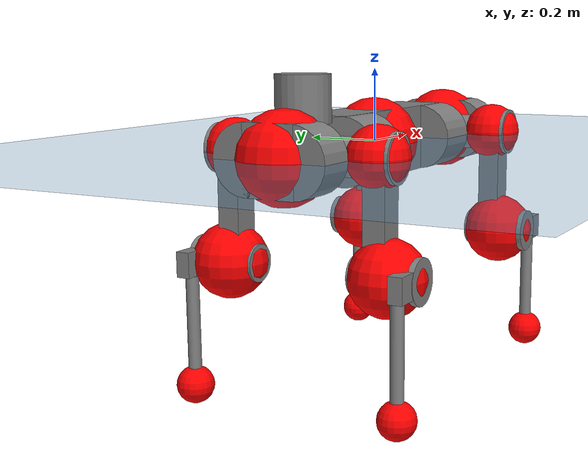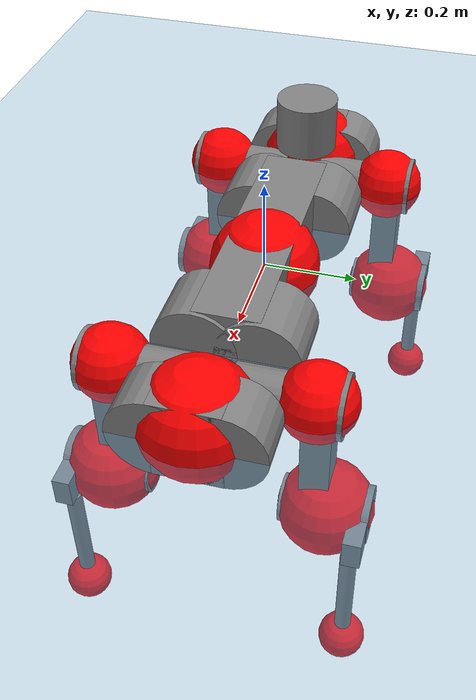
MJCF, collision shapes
<mujoco model="anymal_c">
  <compiler angle="radian" assetdir="assets" balanceinertia="true" inertiafromgeom="false"/>

  <option timestep="0.005" density="1.2" viscosity="2e-05"/>

  <size nkey="1"/>

  <visual>
    <quality shadowsize="8192"/>
    <map shadowclip="0.5"/>
  </visual>

  <default>
    <default class="/">
      <material specular="0" shininess="0.25"/>
      <geom contype="0" conaffinity="0" group="1" solref="-1000 -80"/>
      <site size="0.01 0.005 0.005" group="5"/>
      <general forcelimited="true" forcerange="-80 80" biastype="affine" gainprm="80" biasprm="0 -80 -2"/>
      <default class="anymal_c">
        <joint armature="0.01" damping="0.01" frictionloss="0.1"/>
        <default class="visual">
          <geom type="mesh" group="2"/>
          <default class="visual_zflip"/>
        </default>
        <default class="collision">
          <geom type="cylinder" group="3"/>
          <default class="foot">
            <geom size="0.03 0 0" type="sphere" condim="6" priority="1" friction="0.8 0.02 0.01" solimp="0.015 1 0.03"/>
          </default>
        </default>
      </default>
      <default class="reward_collision_sphere">
        <geom group="5" rgba="1 0 0 1"/>
      </default>
    </default>
  </default>

  <asset>
    <texture type="skybox" colorspace="auto" name="//unnamed_texture_0" builtin="gradient" rgb1="0.95 0.95 0.95" rgb2="0.95 0.95 0.95" width="100" height="600"/>
    <texture type="2d" colorspace="auto" name="texplane" builtin="checker" rgb1="0.345 0.575 0.748" rgb2="0.345 0.575 0.748" markrgb="1 1 1" width="512" height="512"/>
    <texture type="2d" colorspace="linear" name="base" file="base.png"/>
    <texture type="2d" colorspace="linear" name="top_shell" file="top_shell.png"/>
    <texture type="2d" colorspace="linear" name="bottom_shell" file="bottom_shell.png"/>
    <texture type="2d" colorspace="linear" name="remote" file="remote.png"/>
    <texture type="2d" colorspace="linear" name="hatch" file="hatch.png"/>
    <texture type="2d" colorspace="linear" name="handle" file="handle.png"/>
    <texture type="2d" colorspace="linear" name="face" file="face.png"/>
    <texture type="2d" colorspace="linear" name="battery" file="battery.png"/>
    <texture type="2d" colorspace="linear" name="lidar_cage" file="lidar_cage.png"/>
    <texture type="2d" colorspace="linear" name="depth_camera" file="depth_camera.png"/>
    <texture type="2d" colorspace="linear" name="wide_angle_camera" file="wide_angle_camera.png"/>
    <texture type="2d" colorspace="linear" name="lidar" file="lidar.png"/>
    <texture type="2d" colorspace="linear" name="drive" file="drive.png"/>
    <texture type="2d" colorspace="linear" name="hip_l" file="hip_l.png"/>
    <texture type="2d" colorspace="linear" name="shank_l" file="shank_l.png"/>
    <texture type="2d" colorspace="linear" name="foot" file="foot.png"/>
    <texture type="2d" colorspace="linear" name="thigh" file="thigh.png"/>
    <texture type="2d" colorspace="linear" name="shank_r" file="shank_r.png"/>
    <texture type="2d" colorspace="linear" name="hip_r" file="hip_r.png"/>
    <material name="MatPlane" class="/" texture="texplane" texuniform="true" texrepeat="2 2" specular="0.9" shininess="0.5"/>
    <material name="black_plastic" class="/" rgba="0.007 0.007 0.007 1"/>
    <material name="green" class="/" rgba="0.052 0.178 0.033 1"/>
    <material name="red" class="/" rgba="0.178 0.006 0.005 1"/>
    <material name="yellow" class="/" rgba="0.178 0.119 0.006 1"/>
    <material name="lwl" class="/" rgba="0.8 0.8 0.8 1"/>
    <material name="base" class="/" texture="base"/>
    <material name="top_shell" class="/" texture="top_shell"/>
    <material name="bottom_shell" class="/" texture="bottom_shell"/>
    <material name="hip_l" class="/" texture="hip_l"/>
    <material name="thigh" class="/" texture="thigh"/>
    <material name="shank_l" class="/" texture="shank_l"/>
    <material name="foot" class="/" texture="foot"/>
    <material name="hip_r" class="/" texture="hip_r"/>
    <material name="shank" class="/" texture="shank_r"/>
    <material name="hatch" class="/" texture="hatch"/>
    <material name="remote" class="/" texture="remote"/>
    <material name="handle" class="/" texture="handle"/>
    <material name="face" class="/" texture="face"/>
    <material name="depth_camera" class="/" texture="depth_camera"/>
    <material name="wide_angle_camera" class="/" texture="wide_angle_camera"/>
    <material name="battery" class="/" texture="battery"/>
    <material name="lidar_cage" class="/" texture="lidar_cage"/>
    <material name="lidar" class="/" texture="lidar"/>
    <material name="drive" class="/" texture="drive"/>
    <mesh name="base_0" class="/" file="base_0.obj"/>
    <mesh name="base_1" class="/" file="base_1.obj"/>
    <mesh name="base_2" class="/" file="base_2.obj"/>
    <mesh name="base_3" class="/" file="base_3.obj"/>
    <mesh name="base_4" class="/" file="base_4.obj"/>
    <mesh name="base_5" class="/" file="base_5.obj"/>
    <mesh name="top_shell" class="/" file="top_shell.obj"/>
    <mesh name="bottom_shell" class="/" file="bottom_shell.obj"/>
    <mesh name="remote" class="/" file="remote.obj"/>
    <mesh name="handle" class="/" file="handle.obj"/>
    <mesh name="face" class="/" file="face.obj"/>
    <mesh name="wide_angle_camera" class="/" file="wide_angle_camera.obj"/>
    <mesh name="depth_camera" class="/" file="depth_camera.obj"/>
    <mesh name="battery" class="/" file="battery.obj"/>
    <mesh name="lidar_cage" class="/" file="lidar_cage.obj"/>
    <mesh name="lidar" class="/" file="lidar.obj"/>
    <mesh name="drive" class="/" file="drive.obj"/>
    <mesh name="hip_l" class="/" file="hip_l.obj"/>
    <mesh name="thigh" class="/" file="thigh.obj"/>
    <mesh name="shank_l" class="/" file="shank_l.obj"/>
    <mesh name="foot" class="/" file="foot.obj"/>
    <mesh name="hip_r" class="/" file="hip_r.obj"/>
    <mesh name="hatch" class="/" file="hatch.obj"/>
    <mesh name="shank_r" class="/" file="shank_r.obj"/>
  </asset>

  <worldbody>
    <geom name="floor" class="/" size="100 100 0.125" type="plane" group="0" material="MatPlane"/>
    <light name="toplight_shadow" class="/" pos="0 0 5" dir="0.0990148 0.0990148 -0.990148" type="directional" ambient="0.04 0.04 0.04" diffuse="0.55 0.55 0.55" specular="0.12 0.12 0.12"/>
    <light name="toplight_fill" class="/" pos="0 0 5" dir="0.0990148 0.0990148 -0.990148" type="directional" castshadow="false" ambient="0.04 0.04 0.04" diffuse="0.3 0.3 0.3" specular="0.08 0.08 0.08"/>
    <body name="trunk" childclass="anymal_c" pos="-0.000337565 0.000868437 8.90242e-05" quat="1 -1.57848e-05 -0.000225796 -0.000171041">
      <inertial pos="0.00172475 5.49382e-05 0.0511269" quat="0.500134 0.499883 0.500054 0.499929" mass="19.9034" diaginertia="0.842035 0.444153 0.264057"/>
      <joint name="//unnamed_joint_0" type="free" armature="0" damping="0" frictionloss="0"/>
      <geom name="//unnamed_geom_1" class="visual" material="green" mesh="base_0"/>
      <geom name="//unnamed_geom_2" class="visual" material="yellow" mesh="base_1"/>
      <geom name="//unnamed_geom_3" class="visual" material="red" mesh="base_2"/>
      <geom name="//unnamed_geom_4" class="visual" material="black_plastic" mesh="base_3"/>
      <geom name="//unnamed_geom_5" class="visual" material="lwl" mesh="base_4"/>
      <geom name="//unnamed_geom_6" class="visual" material="base" mesh="base_5"/>
      <geom name="trunk_1" class="collision" size="0.293158 0.0707622 0.09098" type="box"/>
      <geom name="trunk_2" class="collision" size="0.09098 0.0732894" pos="0.229992 0.0654443 0" quat="0.707107 0 0.707107 0"/>
      <geom name="trunk_3" class="collision" size="0.09098 0.0732894" pos="-0.229992 0.0654443 0" quat="0.707107 0 0.707107 0"/>
      <geom name="trunk_4" class="collision" size="0.09098 0.0732894" pos="0.229992 -0.0654443 0" quat="0.707107 0 0.707107 0"/>
      <geom name="trunk_5" class="collision" size="0.09098 0.0732894" pos="-0.229992 -0.0654443 0" quat="0.707107 0 0.707107 0"/>
      <geom name="//unnamed_geom_12" class="visual" material="top_shell" mesh="top_shell"/>
      <geom name="//unnamed_geom_13" class="visual" material="bottom_shell" mesh="bottom_shell"/>
      <geom name="//unnamed_geom_14" class="visual" material="remote" mesh="remote"/>
      <geom name="//unnamed_geom_15" class="visual" material="handle" mesh="handle"/>
      <geom name="//unnamed_geom_16" class="visual" pos="0.438306 0 0" quat="1 0 0 0" material="face" mesh="face"/>
      <geom name="trunk_6" class="collision" size="0.0555989 0.0707622 0.09098" pos="0.496465 0 0" type="box"/>
      <geom name="//unnamed_geom_18" class="collision" size="0.09098 0.0555989" pos="0.496465 0.0654443 0" quat="0.707107 0 0.707107 0"/>
      <geom name="//unnamed_geom_19" class="collision" size="0.09098 0.0555989" pos="0.496465 -0.0654443 0" quat="0.707107 0 0.707107 0"/>
      <geom name="//unnamed_geom_20" class="visual" pos="0.488163 0 -0.0302471" quat="0.965926 0 0.258819 0" material="depth_camera" mesh="depth_camera"/>
      <geom name="//unnamed_geom_21" class="visual" pos="0.542463 0 0.0155735" material="wide_angle_camera" mesh="wide_angle_camera"/>
      <geom name="//unnamed_geom_22" class="visual_zflip" pos="-0.438306 0 0" quat="0 0 0 1" material="face" mesh="face"/>
      <geom name="trunk_7" class="collision" size="0.0555989 0.0707622 0.09098" pos="-0.496465 0 0" quat="0 0 0 1" type="box"/>
      <geom name="//unnamed_geom_24" class="collision" size="0.09098 0.0555989" pos="-0.496465 -0.0654443 0" quat="0 -0.707107 0 0.707107"/>
      <geom name="//unnamed_geom_25" class="collision" size="0.09098 0.0555989" pos="-0.496465 0.0654443 0" quat="0 -0.707107 0 0.707107"/>
      <geom name="//unnamed_geom_26" class="visual" pos="-0.488163 0 -0.0302471" quat="0 -0.258819 0 0.965926" material="depth_camera" mesh="depth_camera"/>
      <geom name="//unnamed_geom_27" class="visual_zflip" pos="-0.542463 0 0.0155735" quat="0 0 0 1" material="wide_angle_camera" mesh="wide_angle_camera"/>
      <geom name="//unnamed_geom_28" class="visual" material="battery" mesh="battery"/>
      <geom name="//unnamed_geom_29" class="visual" pos="0 0.0698755 0.0303512" quat="0.683013 -0.183013 0.183013 0.683013" material="depth_camera" mesh="depth_camera"/>
      <geom name="//unnamed_geom_30" class="visual" pos="0 -0.0698755 0.0303512" quat="0.683013 0.183013 0.183013 -0.683013" material="depth_camera" mesh="depth_camera"/>
      <geom name="//unnamed_geom_31" class="visual" pos="-0.384906 0 0.0764631" quat="1 0 0 0" material="lidar_cage" mesh="lidar_cage"/>
      <geom name="trunk_8" class="collision" size="0.0707622 0.0606533" pos="-0.384906 0 0.138882"/>
      <geom name="//unnamed_geom_33" class="visual" pos="-0.384906 -4.81328e-05 0.147933" quat="0.707107 0 0 -0.707107" material="lidar" mesh="lidar"/>
      <geom name="//unnamed_geom_34" class="visual" pos="0.317124 0.097269 -1.81809e-09" quat="0.258819 0.965926 0 0" material="drive" mesh="drive"/>
      <geom name="//unnamed_geom_35" class="visual" pos="0.317124 -0.097269 1.81809e-09" quat="0.258819 -0.965926 0 0" material="drive" mesh="drive"/>
      <geom name="//unnamed_geom_36" class="visual" pos="-0.317124 0.097269 1.81809e-09" quat="0 0 0.965926 -0.258819" material="drive" mesh="drive"/>
      <geom name="//unnamed_geom_37" class="visual" pos="-0.317124 -0.097269 -1.81809e-09" quat="0 0 -0.965926 -0.258819" material="drive" mesh="drive"/>
      <geom name="//unnamed_geom_38" class="visual" pos="0.122662 0 0.075943" quat="1 0 0 0" material="hatch" mesh="hatch"/>
      <geom name="//unnamed_geom_39" class="reward_collision_sphere" size="0.121307"/>
      <geom name="//unnamed_geom_40" class="reward_collision_sphere" size="0.121307" pos="0.475845 0 0"/>
      <geom name="//unnamed_geom_41" class="reward_collision_sphere" size="0.121307" pos="-0.475845 0 0"/>
      <site name="imu" pos="0.263623 0.00811229 0.0458972" size="0.0101089"/>
      <camera name="track" pos="0 -1.86984 0" quat="0.707107 0.707107 0 0" mode="trackcom"/>
      <camera name="ego_camera" pos="0.475845 0 -0.0416126" quat="-0.5 -0.5 0.5 0.5"/>
      <body name="LF_HIP" pos="0.317888 0.0983915 -0.000939783" quat="0.258809 0.965928 -0.000239715 7.64029e-05">
        <inertial pos="0.0593459 -0.0133957 -0.00780477" quat="-0.127536 0.710518 -0.13507 0.678715" mass="2.863" diaginertia="0.00769729 0.00349691 0.00395847"/>
        <joint name="LF_HAA" pos="0 0 0" axis="0.99999 0.0044711 -0.000165729" range="-0.713983 0.494641" armature="0.00975507" damping="0.0153382" frictionloss="0.0998394"/>
        <geom name="//unnamed_geom_42" class="visual" pos="0 -0.00010695 1.75665e-05" quat="0.258819 -0.965926 0 0" material="hip_l" mesh="hip_l"/>
        <geom name="//unnamed_geom_43" class="visual" pos="0.0633403 -0.0751746 -0.0441816" quat="0.183013 -0.683013 0.683013 0.183013" material="drive" mesh="drive"/>
        <geom name="//unnamed_geom_44" class="collision" size="0.0505444 0.0707622" pos="0.0633403 -0.0111814 -0.00718337" quat="-0.353553 -0.612372 0.612372 -0.353553"/>
        <body name="LF_THIGH" pos="0.0635735 -0.0676811 -0.043529" quat="0.183151 -0.682983 0.683007 0.18301">
          <inertial pos="0.0331881 1.92839e-05 -0.255671" quat="0.99319 -0.00628906 -0.0797889 0.0846571" mass="3.1483" diaginertia="0.0400787 0.0214471 0.00509528"/>
          <joint name="LF_HFE" pos="0 0 0" axis="0.999995 0.00298504 -0.000836015" stiffness="0.00425144" range="-3.13416 3.12346" armature="0.00971869" damping="0.00508049" frictionloss="0.0981302"/>
          <geom name="//unnamed_geom_45" class="visual" pos="0.00243757 3.84103e-06 0" quat="0.707107 0 0 -0.707107" material="thigh" mesh="thigh"/>
          <geom name="//unnamed_geom_46" class="collision" size="0.0657078 0.0404356" pos="0.0422973 0 0" quat="0.5 0.5 -0.5 -0.5"/>
          <geom name="//unnamed_geom_47" class="collision" size="0.0379083 0.0303267 0.142853" pos="0.031723 0 -0.147011" quat="0.707107 0 0 -0.707107" type="box"/>
          <geom name="//unnamed_geom_48" class="visual" pos="0.106061 0 -0.29649" quat="1 0 0 0" material="drive" mesh="drive"/>
          <geom name="//unnamed_geom_49" class="collision" size="0.0505444 0.0707622" pos="0.0320402 0 -0.29649" quat="0.707107 0 0.707107 0"/>
          <geom name="//unnamed_geom_50" class="reward_collision_sphere" size="0.0808711" pos="0.0264358 0 0"/>
          <body name="LF_SHANK" pos="0.106358 -0.000194402 -0.296647" quat="1 -0.00045805 -0.000198463 1.00966e-05">
            <inertial pos="0.00490618 -0.0579494 -0.0831764" quat="0.992973 -0.115544 -5.77389e-05 -0.0255691" mass="0.610593" diaginertia="0.0133847 0.00654105 0.00137809"/>
            <joint name="LF_KFE" pos="0 0 0" axis="0.999999 -0.0012084 0.00103135" range="-3.13426 3.14763" armature="0.0105433" damping="0.00936923" frictionloss="0.100851"/>
            <geom name="//unnamed_geom_51" class="visual" pos="0.000794837 0.00423811 0" quat="0.707107 0 0 -0.707107" material="shank_l" mesh="shank_l"/>
            <geom name="LF_kfe_act" class="collision" size="0.0606533 0.0202178" pos="0.0211487 0 0" quat="0.5 0.5 -0.5 -0.5"/>
            <geom name="//unnamed_geom_53" class="collision" size="0.0581251 0.0341175 0.0192069" pos="0.0211487 -0.0537569 0" quat="0.5 0.5 -0.5 -0.5" type="box"/>
            <geom name="//unnamed_geom_54" class="visual" pos="0.0137993 -0.0808603 -0.351595" quat="0.382683 0 0 -0.92388" material="foot" mesh="foot"/>
            <geom name="LF_calf" class="collision" size="0.0176906 0.14279" pos="0.0137995 -0.0822261 -0.175798" quat="0.707107 0 0 -0.707107"/>
            <geom name="LF_foot" class="foot" size="0.0288558" pos="0.0137995 -0.0822261 -0.328188" quat="0.707107 0 0 -0.707107"/>
            <geom name="//unnamed_geom_57" class="reward_collision_sphere" size="0.101089" pos="-0.0528717 0 0"/>
            <geom name="//unnamed_geom_58" class="reward_collision_sphere" size="0.0505444" pos="0.0137995 -0.0822261 -0.328188"/>
            <site name="LF_foot" class="foot" pos="0.0137995 -0.0822261 -0.328188" quat="0.707107 0 0 -0.707107" size="0.0101089"/>
          </body>
        </body>
      </body>
      <body name="RF_HIP" pos="0.317631 -0.0977927 -0.000350647" quat="0.258699 -0.965958 -1.22668e-05 -1.03402e-06">
        <inertial pos="0.0594585 0.0149679 -0.00868995" quat="0.135319 0.678912 0.128682 0.710076" mass="2.87893" diaginertia="0.00764536 0.00345515 0.00400967"/>
        <joint name="RF_HAA" pos="0 0 0" axis="0.999999 -0.00141843 -1.67126e-05" stiffness="0.000912509" range="-0.509048 0.726008" armature="0.00987178" damping="0.00983835" frictionloss="0.103166"/>
        <geom name="//unnamed_geom_59" class="visual" pos="0 0.000106949 1.75664e-05" quat="0.258819 0.965926 0 0" material="hip_r" mesh="hip_r"/>
        <geom name="//unnamed_geom_60" class="visual" pos="0.0633403 0.0751746 -0.0441816" quat="0.183013 0.683013 0.683013 -0.183013" material="drive" mesh="drive"/>
        <geom name="//unnamed_geom_61" class="collision" size="0.0505444 0.0707622" pos="0.0633403 0.0111814 -0.00718337" quat="-0.353553 0.612372 0.612372 0.353553"/>
        <body name="RF_THIGH" pos="0.0638127 0.0675174 -0.0444055" quat="0.18298 0.683069 0.682966 -0.183009">
          <inertial pos="0.0335067 -0.000614856 -0.255875" quat="0.992783 -0.0052449 -0.0805082 0.0887331" mass="3.14056" diaginertia="0.0399705 0.0214213 0.00513243"/>
          <joint name="RF_HFE" pos="0 0 0" axis="1 -3.26694e-05 0.000258579" stiffness="0.00697546" range="-3.14906 3.13699" armature="0.0101405" damping="0.00964368" frictionloss="0.0997131"/>
          <geom name="//unnamed_geom_62" class="visual" pos="0.00243757 3.84103e-06 0" quat="0.707107 0 0 -0.707107" material="thigh" mesh="thigh"/>
          <geom name="//unnamed_geom_63" class="collision" size="0.0657078 0.0404356" pos="0.0422973 0 0" quat="0.5 0.5 0.5 0.5"/>
          <geom name="//unnamed_geom_64" class="collision" size="0.0379083 0.0303267 0.142853" pos="0.031723 0 -0.147011" quat="0.707107 0 0 0.707107" type="box"/>
          <geom name="//unnamed_geom_65" class="visual" pos="0.106061 0 -0.29649" quat="1 0 0 0" material="drive" mesh="drive"/>
          <geom name="//unnamed_geom_66" class="collision" size="0.0505444 0.0707622" pos="0.0320402 0 -0.29649" quat="0.707107 0 0.707107 0"/>
          <geom name="//unnamed_geom_67" class="reward_collision_sphere" size="0.0808711" pos="0.0264358 0 0"/>
          <body name="RF_SHANK" pos="0.104837 0.000340349 -0.296897" quat="1 1.64426e-05 2.1849e-05 3.76176e-05">
            <inertial pos="0.00519737 0.0571861 -0.0842052" quat="0.992952 0.115792 -0.00121051 0.0252313" mass="0.607482" diaginertia="0.01329 0.00662496 0.00135298"/>
            <joint name="RF_KFE" pos="0 0 0" axis="0.999998 -1.32689e-05 -0.00212294" range="-3.13102 3.13995" armature="0.00996618" damping="0.00541812" frictionloss="0.10356"/>
            <geom name="//unnamed_geom_68" class="visual" pos="0.000794833 -0.0042381 0" quat="0.707107 0 0 0.707107" material="shank" mesh="shank_r"/>
            <geom name="RF_kfe_act" class="collision" size="0.0606533 0.0202178" pos="0.0211487 0 0" quat="0.5 0.5 0.5 0.5"/>
            <geom name="//unnamed_geom_70" class="collision" size="0.0581251 0.0341175 0.0192069" pos="0.0211487 0.0537569 0" quat="0.5 0.5 0.5 0.5" type="box"/>
            <geom name="//unnamed_geom_71" class="visual" pos="0.0137997 0.0808603 -0.351595" quat="0.382683 0 0 0.92388" material="foot" mesh="foot"/>
            <geom name="RF_calf" class="collision" size="0.0176906 0.14279" pos="0.0137995 0.0822261 -0.175798" quat="0.707107 0 0 0.707107"/>
            <geom name="RF_foot" class="foot" size="0.0297889" pos="0.0137995 0.0822261 -0.328188" quat="0.707107 0 0 0.707107"/>
            <geom name="//unnamed_geom_74" class="reward_collision_sphere" size="0.101089" pos="-0.0528717 0 0"/>
            <geom name="//unnamed_geom_75" class="reward_collision_sphere" size="0.0505444" pos="0.0137995 0.0822261 -0.328188"/>
            <site name="RF_foot" class="foot" pos="0.0137995 0.0822261 -0.328188" quat="0.707107 0 0 0.707107" size="0.0101089"/>
          </body>
        </body>
      </body>
      <body name="LH_HIP" pos="-0.316731 0.0979808 -0.000376498" quat="0.000412536 4.60581e-05 0.965815 -0.259231">
        <inertial pos="0.0604505 0.0136196 -0.00893531" quat="0.13523 0.679147 0.12811 0.709972" mass="2.8834" diaginertia="0.0077233 0.00347115 0.00397647"/>
        <joint name="LH_HAA" pos="0 0 0" axis="1 -2.11486e-05 0.000214196" range="-0.501957 0.724458" armature="0.010094" damping="0.00889938" frictionloss="0.100892"/>
        <geom name="//unnamed_geom_76" class="visual" pos="0 0.000106949 1.75664e-05" quat="-0.258819 -0.965926 0 0" material="hip_r" mesh="hip_r"/>
        <geom name="//unnamed_geom_77" class="visual" pos="0.0633403 0.0751746 -0.0441816" quat="0.183013 0.683013 0.683013 -0.183013" material="drive" mesh="drive"/>
        <geom name="//unnamed_geom_78" class="collision" size="0.0505444 0.0707622" pos="0.0633403 0.0111814 -0.00718337" quat="-0.353553 0.612372 0.612372 0.353553"/>
        <body name="LH_THIGH" pos="0.0624062 0.0672188 -0.044775" quat="0.18314 0.683042 0.682972 -0.18293">
          <inertial pos="0.0324537 -0.000387646 -0.255687" quat="0.992773 -0.00615225 -0.081177 0.0881728" mass="3.18698" diaginertia="0.0401726 0.021515 0.00510887"/>
          <joint name="LH_HFE" pos="0 0 0" axis="0.999996 -0.00288038 -0.000618724" range="-3.1454 3.13578" armature="0.0105138" damping="0.00552783" frictionloss="0.100473"/>
          <geom name="//unnamed_geom_79" class="visual" pos="0.00243757 3.84103e-06 0" quat="0.707107 0 0 -0.707107" material="thigh" mesh="thigh"/>
          <geom name="//unnamed_geom_80" class="collision" size="0.0657078 0.0404356" pos="0.0422973 0 0" quat="0.5 0.5 -0.5 -0.5"/>
          <geom name="//unnamed_geom_81" class="collision" size="0.0379083 0.0303267 0.142853" pos="0.031723 0 -0.147011" quat="0.707107 0 0 -0.707107" type="box"/>
          <geom name="//unnamed_geom_82" class="visual" pos="0.106061 0 -0.29649" quat="1 0 0 0" material="drive" mesh="drive"/>
          <geom name="//unnamed_geom_83" class="collision" size="0.0505444 0.0707622" pos="0.0320402 0 -0.29649" quat="0.707107 0 0.707107 0"/>
          <geom name="//unnamed_geom_84" class="reward_collision_sphere" size="0.0808711" pos="0.0264358 0 0"/>
          <body name="LH_SHANK" pos="0.106006 -0.000406127 -0.29697" quat="1 4.09464e-05 1.09319e-05 -0.000114319">
            <inertial pos="0.00583513 0.0571307 -0.0847037" quat="0.992872 0.116403 -0.00099077 0.0255992" mass="0.605957" diaginertia="0.0134561 0.00659508 0.00136729"/>
            <joint name="LH_KFE" pos="0 0 0" axis="0.999998 -0.00085635 0.00161196" range="-3.15327 3.1395" armature="0.0101316" damping="0.00624334" frictionloss="0.100406"/>
            <geom name="//unnamed_geom_85" class="visual" pos="0.000794833 -0.0042381 0" quat="-0.707107 0 0 -0.707107" material="shank" mesh="shank_r"/>
            <geom name="LH_kfe_act" class="collision" size="0.0606533 0.0202178" pos="0.0211487 0 0" quat="0.5 0.5 -0.5 -0.5"/>
            <geom name="//unnamed_geom_87" class="collision" size="0.0581251 0.0341175 0.0192069" pos="0.0211487 0.0537569 0" quat="0.5 0.5 -0.5 -0.5" type="box"/>
            <geom name="//unnamed_geom_88" class="visual" pos="0.0137997 0.0808603 -0.351595" quat="-0.382683 0 0 -0.92388" material="foot" mesh="foot"/>
            <geom name="LH_calf" class="collision" size="0.0176906 0.14279" pos="0.0137995 0.0822261 -0.175798" quat="0.707107 0 0 -0.707107"/>
            <geom name="LH_foot" class="foot" size="0.0304263" pos="0.0137995 0.0822261 -0.328188" quat="0.707107 0 0 -0.707107"/>
            <geom name="//unnamed_geom_91" class="reward_collision_sphere" size="0.101089" pos="-0.0528717 0 0"/>
            <geom name="//unnamed_geom_92" class="reward_collision_sphere" size="0.0505444" pos="0.0137995 0.0822261 -0.328188"/>
            <site name="LH_foot" class="foot" pos="0.0137995 0.0822261 -0.328188" quat="0.707107 0 0 -0.707107" size="0.0101089"/>
          </body>
        </body>
      </body>
      <body name="RH_HIP" pos="-0.316552 -0.0979561 -0.000194302" quat="0.000283266 -7.95954e-05 -0.966003 -0.25853">
        <inertial pos="0.0599628 -0.0150511 -0.00890567" quat="-0.127863 0.709737 -0.135124 0.67946" mass="2.86652" diaginertia="0.00764315 0.0034649 0.00400616"/>
        <joint name="RH_HAA" pos="0 0 0" axis="1 0.000265273 -6.75828e-05" range="-0.71951 0.495071" armature="0.0102285" damping="0.0152466" frictionloss="0.10257"/>
        <geom name="//unnamed_geom_93" class="visual" pos="0 -0.00010695 1.75665e-05" quat="-0.258819 0.965926 0 0" material="hip_l" mesh="hip_l"/>
        <geom name="//unnamed_geom_94" class="visual" pos="0.0633403 -0.0751746 -0.0441816" quat="-0.183013 0.683013 -0.683013 -0.183013" material="drive" mesh="drive"/>
        <geom name="//unnamed_geom_95" class="collision" size="0.0505444 0.0707622" pos="0.0633403 -0.0111814 -0.00718337" quat="0.353553 0.612372 -0.612372 0.353553"/>
        <body name="RH_THIGH" pos="0.0628932 -0.0682485 -0.0436426" quat="-0.183006 0.683047 -0.682972 -0.183044">
          <inertial pos="0.0328022 0.000684653 -0.25572" quat="0.993149 -0.00446902 -0.0807152 0.0843825" mass="3.19316" diaginertia="0.0401001 0.0213719 0.0051013"/>
          <joint name="RH_HFE" pos="0 0 0" axis="0.999999 -0.0012621 -0.000473289" range="-3.13973 3.12524" armature="0.00972168" damping="0.00542055" frictionloss="0.0987604"/>
          <geom name="//unnamed_geom_96" class="visual" pos="0.00243757 3.84103e-06 0" quat="0.707107 0 0 -0.707107" material="thigh" mesh="thigh"/>
          <geom name="//unnamed_geom_97" class="collision" size="0.0657078 0.0404356" pos="0.0422973 0 0" quat="0.5 0.5 0.5 0.5"/>
          <geom name="//unnamed_geom_98" class="collision" size="0.0379083 0.0303267 0.142853" pos="0.031723 0 -0.147011" quat="0.707107 0 0 0.707107" type="box"/>
          <geom name="//unnamed_geom_99" class="visual" pos="0.106061 0 -0.29649" quat="1 0 0 0" material="drive" mesh="drive"/>
          <geom name="//unnamed_geom_100" class="collision" size="0.0505444 0.0707622" pos="0.0320402 0 -0.29649" quat="0.707107 0 0.707107 0"/>
          <geom name="//unnamed_geom_101" class="reward_collision_sphere" size="0.0808711" pos="0.0264358 0 0"/>
          <body name="RH_SHANK" pos="0.104842 -0.000543491 -0.296131" quat="1 -0.000169121 -9.45816e-05 -4.33122e-05">
            <inertial pos="0.00669408 -0.0571685 -0.084724" quat="0.992938 -0.115786 -0.00125169 -0.0258142" mass="0.609291" diaginertia="0.0132291 0.00662719 0.00134049"/>
            <joint name="RH_KFE" pos="0 0 0" axis="0.999986 0.00342215 0.00396103" range="-3.14135 3.15233" armature="0.0104877" damping="0.0105065" frictionloss="0.103307"/>
            <geom name="//unnamed_geom_102" class="visual" pos="0.000794837 0.00423811 0" quat="0.707107 0 0 -0.707107" material="shank_l" mesh="shank_l"/>
            <geom name="RH_kfe_act" class="collision" size="0.0606533 0.0202178" pos="0.0211487 0 0" quat="0.5 0.5 0.5 0.5"/>
            <geom name="//unnamed_geom_104" class="collision" size="0.0581251 0.0341175 0.0192069" pos="0.0211487 -0.0537569 0" quat="0.5 0.5 0.5 0.5" type="box"/>
            <geom name="//unnamed_geom_105" class="visual" pos="0.0137993 -0.0808603 -0.351595" quat="0.382683 0 0 -0.92388" material="foot" mesh="foot"/>
            <geom name="RH_calf" class="collision" size="0.0176906 0.14279" pos="0.0137995 -0.0822261 -0.175798" quat="0.707107 0 0 0.707107"/>
            <geom name="RH_foot" class="foot" size="0.027824" pos="0.0137995 -0.0822261 -0.328188" quat="0.707107 0 0 0.707107"/>
            <geom name="//unnamed_geom_108" class="reward_collision_sphere" size="0.101089" pos="-0.0528717 0 0"/>
            <geom name="//unnamed_geom_109" class="reward_collision_sphere" size="0.0505444" pos="0.0137995 -0.0822261 -0.328188"/>
            <site name="RH_foot" class="foot" pos="0.0137995 -0.0822261 -0.328188" quat="0.707107 0 0 0.707107" size="0.0101089"/>
          </body>
        </body>
      </body>
    </body>
  </worldbody>

  <contact>
    <pair class="/" geom1="floor" geom2="LF_foot" name="//unnamed_contact_0"/>
    <pair class="/" geom1="floor" geom2="RF_foot" name="//unnamed_contact_1"/>
    <pair class="/" geom1="floor" geom2="LH_foot" name="//unnamed_contact_2"/>
    <pair class="/" geom1="floor" geom2="RH_foot" name="//unnamed_contact_3"/>
  </contact>

  <actuator>
    <general name="LF_HAA" class="/" joint="LF_HAA" forcerange="-81.1554 81.1554" gainprm="81.4638" biasprm="0 -81.4638 -1.96488"/>
    <general name="LF_HFE" class="/" joint="LF_HFE" forcerange="-82.5973 82.5973" gainprm="81.4638" biasprm="0 -81.4638 -1.96488"/>
    <general name="LF_KFE" class="/" joint="LF_KFE" forcerange="-81.5213 81.5213" gainprm="81.4638" biasprm="0 -81.4638 -1.96488"/>
    <general name="RF_HAA" class="/" joint="RF_HAA" forcerange="-84.1075 84.1075" gainprm="81.4638" biasprm="0 -81.4638 -1.96488"/>
    <general name="RF_HFE" class="/" joint="RF_HFE" forcerange="-81.8558 81.8558" gainprm="81.4638" biasprm="0 -81.4638 -1.96488"/>
    <general name="RF_KFE" class="/" joint="RF_KFE" forcerange="-83.4709 83.4709" gainprm="81.4638" biasprm="0 -81.4638 -1.96488"/>
    <general name="LH_HAA" class="/" joint="LH_HAA" forcerange="-82.082 82.082" gainprm="81.4638" biasprm="0 -81.4638 -1.96488"/>
    <general name="LH_HFE" class="/" joint="LH_HFE" forcerange="-82.0748 82.0748" gainprm="81.4638" biasprm="0 -81.4638 -1.96488"/>
    <general name="LH_KFE" class="/" joint="LH_KFE" forcerange="-80.6523 80.6523" gainprm="81.4638" biasprm="0 -81.4638 -1.96488"/>
    <general name="RH_HAA" class="/" joint="RH_HAA" forcerange="-81.9146 81.9146" gainprm="81.4638" biasprm="0 -81.4638 -1.96488"/>
    <general name="RH_HFE" class="/" joint="RH_HFE" forcerange="-79.998 79.998" gainprm="81.4638" biasprm="0 -81.4638 -1.96488"/>
    <general name="RH_KFE" class="/" joint="RH_KFE" forcerange="-81.1143 81.1143" gainprm="81.4638" biasprm="0 -81.4638 -1.96488"/>
  </actuator>

  <sensor>
    <gyro site="imu" name="imu_angular_velocity"/>
    <velocimeter site="imu" name="imu_linear_velocity"/>
    <framelinvel objtype="site" objname="LF_foot" name="LF_foot_global_linear_velocity"/>
    <framelinvel objtype="site" objname="RF_foot" name="RF_foot_global_linear_velocity"/>
    <framelinvel objtype="site" objname="LH_foot" name="LH_foot_global_linear_velocity"/>
    <framelinvel objtype="site" objname="RH_foot" name="RH_foot_global_linear_velocity"/>
  </sensor>

  <keyframe>
    <key name="home" qpos="0 0 0.55 1 0 0 0 0 0.4 -0.8 0 -0.4 0.8 0 -0.4 0.8 0 0.4 -0.8"/>
  </keyframe>
</mujoco>
